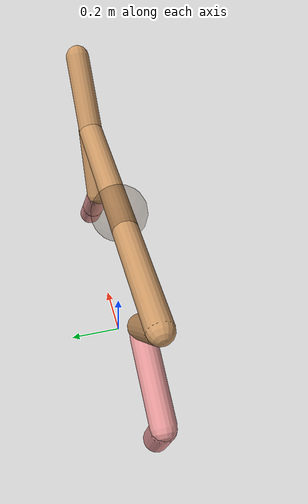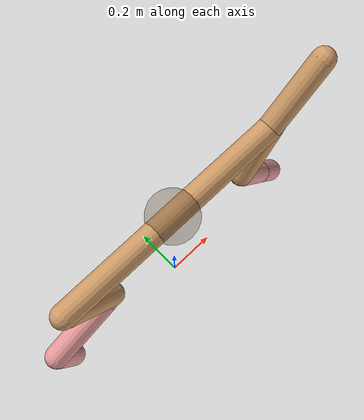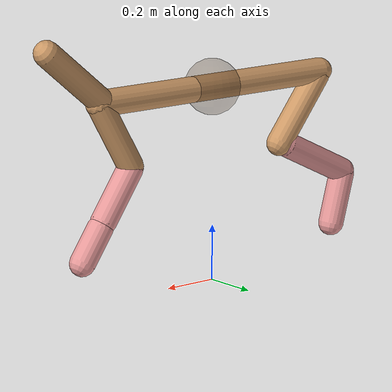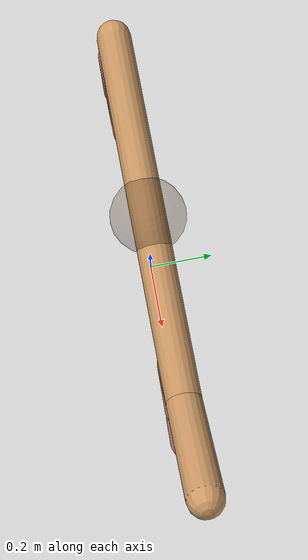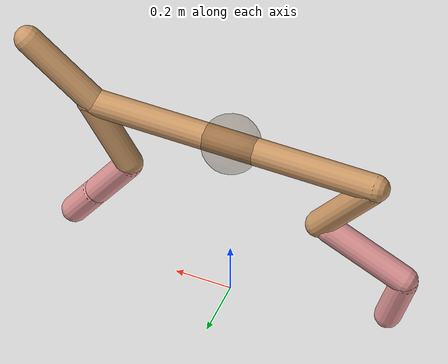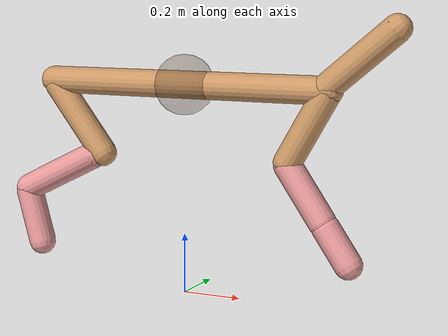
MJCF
<mujoco model="cheetah">
  <compiler angle="radian" coordinate="local" inertiafromgeom="true" settotalmass="14"/>
  <default>
    <joint armature=".1" damping=".01" limited="true" solimplimit="0 .8 .03" solreflimit=".02 1" stiffness="8"/>
    <geom conaffinity="0" condim="3" contype="1" friction="0.8 .1 .1" rgba="0.8 0.6 .4 1" solimp="0.0 0.8 0.01" solref="0.02 1"/>
    <motor ctrllimited="true" ctrlrange="-1 1"/>
  </default>
  <size nstack="300000" nuser_geom="1"/>
  <option gravity="0 0 -9.81" timestep="0.001"/>

    <asset>
	<texture type="skybox" builtin="gradient" width="128" height="128" rgb1=".4 .6 .8" rgb2="0 0 0"/>
        <texture name="texgeom" type="cube" builtin="flat" mark="cross" width="127" height="1278"
            rgb1="0.8 0.6 0.4" rgb2="0.8 0.6 0.4" markrgb="1 1 1" random="0.01"/>
        <texture name="texplane" type="2d" builtin="checker" rgb1=".2 .3 .4" rgb2=".1 0.15 0.2"
            width="512" height="512"/>

        <material name='MatPlane' reflectance='0.3' texture="texplane" texrepeat="1 1" texuniform="true"/>
        <material name='geom' texture="texgeom" texuniform="true"/>
    </asset>

  <worldbody>
    <geom name='floor' pos='0 0 -1' size='50 50 .125' type='plane' rgba="1.0 0.0 0.0 0.0" condim='3' friction="1 .1 .1"/>
    <body name="torso" pos="0 0 .7">
      <site name="center" pos="0 0 0" size=".1" type="sphere" rgba="0.3 0.2 0.1 0.3"/>
      <joint armature="0" axis="1 0 0" damping="0" limited="false" name="ignorex" pos="0 0 0" stiffness="0" type="slide"/>
      <joint armature="0" axis="0 0 1" damping="0" limited="false" name="ignorez" pos="0 0 0" stiffness="0" type="slide"/>
      <joint armature="0" axis="0 1 0" damping="0" limited="false" name="ignorey" pos="0 0 0" stiffness="0" type="hinge"/>
      <geom fromto="-.5 0 0 .5 0 0" name="torso" size="0.046" type="capsule"/>
      <geom axisangle="0 1 0 .87" name="head" pos=".6 0 .1" size="0.046 .15" type="capsule"/>
      <freejoint name="root"/>
      <body name="bthigh" pos="-.5 0 0">
        <joint axis="0 1 0" damping="6" name="bthigh" pos="0 0 0" range="-.52 1.05" stiffness="240" type="hinge"/>
        <geom axisangle="0 1 0 -3.8" name="bthigh" pos=".1 0 -.13" size="0.046 .145" type="capsule"/>
        <body name="bshin" pos=".16 0 -.25">
          <joint axis="0 1 0" damping="4.5" name="bshin" pos="0 0 0" range="-.785 .785" stiffness="180" type="hinge"/>
          <geom axisangle="0 1 0 -2.03" name="bshin" pos="-.14 0 -.07" rgba="0.9 0.6 0.6 1" size="0.046 .15" type="capsule"/>
          <body name="bfoot" pos="-.28 0 -.14">
            <joint axis="0 1 0" damping="3" name="bfoot" pos="0 0 0" range="-.4 .785" stiffness="120" type="hinge"/>
            <geom axisangle="0 1 0 -.27" name="bfoot" pos=".03 0 -.097" rgba="0.9 0.6 0.6 1" size="0.046 .094" type="capsule"/>
            <inertial mass="10" pos="0 0 0"/>
          </body>
        </body>
      </body>
      <body name="fthigh" pos=".5 0 0">
        <joint axis="0 1 0" damping="4.5" name="fthigh" pos="0 0 0" range="-1.5 0.8" stiffness="180" type="hinge"/>
        <geom axisangle="0 1 0 .52" name="fthigh" pos="-.07 0 -.12" size="0.046 .133" type="capsule"/>
        <body name="fshin" pos="-.14 0 -.24">
          <joint axis="0 1 0" damping="3" name="fshin" pos="0 0 0" range="-1.2 1.1" stiffness="120" type="hinge"/>
          <geom axisangle="0 1 0 -.6" name="fshin" pos=".065 0 -.09" rgba="0.9 0.6 0.6 1" size="0.046 .106" type="capsule"/>
          <body name="ffoot" pos=".13 0 -.18">
            <joint axis="0 1 0" damping="1.5" name="ffoot" pos="0 0 0" range="-3.1 -0.3" stiffness="60" type="hinge"/>
            <geom axisangle="0 1 0 -.6" name="ffoot" pos=".045 0 -.07" rgba="0.9 0.6 0.6 1" size="0.046 .07" type="capsule"/>
            <inertial mass="10" pos="0 0 0"/>
          </body>
        </body>
      </body>
    </body>
  </worldbody>
  <actuator>
    <motor gear="120" joint="bthigh" name="bthigh"/>
    <motor gear="90" joint="bshin" name="bshin"/>
    <motor gear="60" joint="bfoot" name="bfoot"/>
    <motor gear="120" joint="fthigh" name="fthigh"/>
    <motor gear="60" joint="fshin" name="fshin"/>
    <motor gear="30" joint="ffoot" name="ffoot"/>
  </actuator>
  <sensor>
	<velocimeter name="speed"		site="center" />

	<jointpos name="rot1"  			joint="bthigh" />
	<jointvel name="dotrot1"  		joint="bthigh" />

	<jointpos name="rot2"  			joint="bshin" />
	<jointvel name="dotrot2"  		joint="bshin" />

	<jointpos name="rot3"  			joint="bfoot" />
	<jointvel name="dotrot3"  		joint="bfoot" />

	<jointpos name="rot7"  			joint="fthigh" />
	<jointvel name="dotrot7"  		joint="fthigh" />

	<jointpos name="rot4"  			joint="fshin" />
	<jointvel name="dotrot4"  		joint="fshin" />

	<jointpos name="rot5"  			joint="ffoot" />
	<jointvel name="dotrot5"  		joint="ffoot" />

 </sensor>
</mujoco>
